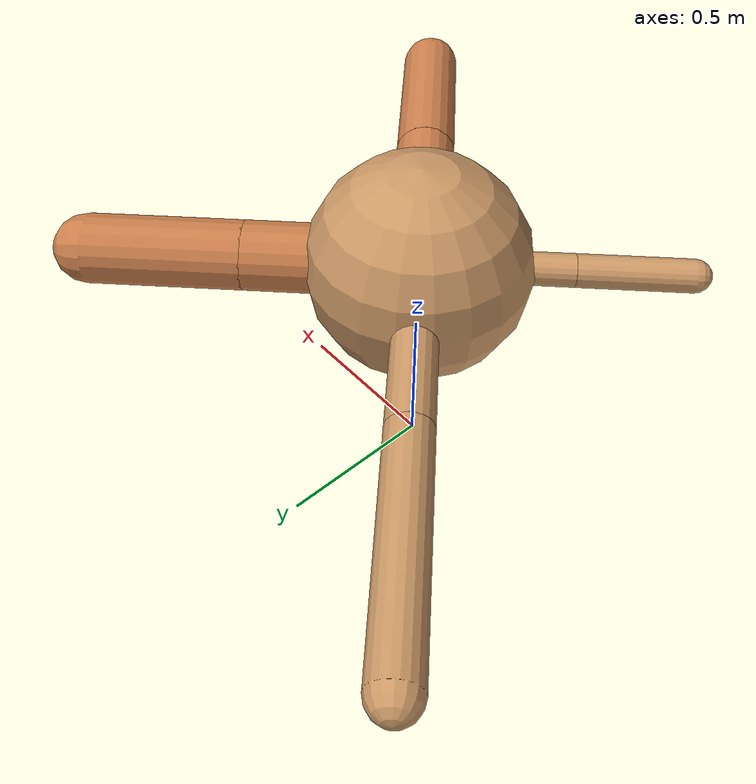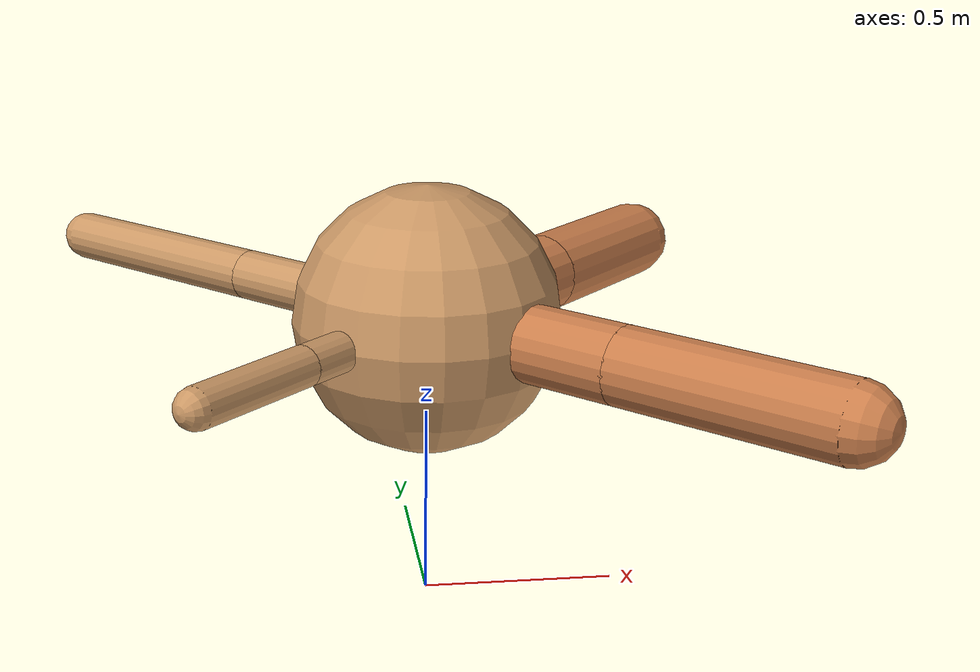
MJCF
<?xml version="1.0" ?>
<mujoco model="ant">

	<compiler angle="degree" coordinate="local" inertiafromgeom="true"/>

	<option integrator="RK4" timestep="0.01"/>

	<custom>

		<numeric data="0.0 0.0 0.55 1.0 0.0 0.0 0.0 0.0 1.0 0.0 -1.0 0.0 -1.0 0.0 1.0" name="init_qpos"/>

	</custom>

	<default>

		<joint armature="1" damping="1" limited="true"/>

		<geom conaffinity="0" condim="3" density="5.0" friction="1.5 0.1 0.1" margin="0.01" rgba="0.8 0.6 0.4 1"/>

	</default>

	<worldbody>

		<body name="torso" pos="0 0 0.75">

			<geom name="torso_geom" pos="0 0 0" size="0.3389318793683342" type="sphere"/>

			<!--joint armature="0" damping="0" limited="false" margin="0.01" name="root" pos="0 0 0" type="free"/-->

			<body name="front_left_leg" pos="0 0 0">

				<geom fromto="0 0 0 0.2 0.2 0" name="aux_1_geom" size="0.10479332834496873" type="capsule" rgba=".8 .5 .3 1"/>

				<body name="aux_1" pos="0.2 0.2 0">

					<joint axis="0 0 1" name="hip_1" pos="0.0 0.0 0.0" range="-40 40" type="hinge"/>

					<geom fromto="0 0 0 0.16472462718413133 0.16472462718413133 0" name="left_leg_geom" size="0.10479332834496873" type="capsule" rgba=".8 .5 .3 1"/>

					<body pos="0.16472462718413133 0.16472462718413133 0" name="front_left_foot">

						<joint axis="-1 1 0" name="ankle_1" pos="0.0 0.0 0.0" range="30 100" type="hinge"/>

						<geom fromto="0 0 0 0.32944925436826267 0.32944925436826267 0" name="left_ankle_geom" size="0.10479332834496873" type="capsule" rgba=".8 .5 .3 1"/>

					</body>

				</body>

			</body>

			<body name="front_right_leg" pos="0 0 0">

				<geom fromto="0 0 0 -0.2 0.2 0" name="aux_2_geom" size="0.06691145170616722" type="capsule"/>

				<body name="aux_2" pos="-0.2 0.2 0">

					<joint axis="0 0 1" name="hip_2" pos="0.0 0.0 0.0" range="-40 40" type="hinge"/>

					<geom fromto="0 0 0 -0.23752803102006861 0.23752803102006861 0" name="right_leg_geom" size="0.06691145170616722" type="capsule"/>

					<body pos="-0.23752803102006861 0.23752803102006861 0" name="front_right_foot">

						<joint axis="1 1 0" name="ankle_2" pos="0.0 0.0 0.0" range="-100 -30" type="hinge"/>

						<geom fromto="0 0 0 -0.47505606204013723 0.47505606204013723 0" name="right_ankle_geom" size="0.06691145170616722" type="capsule"/>

					</body>

				</body>

			</body>

			<body name="left_back_leg" pos="0 0 0">

				<geom fromto="0 0 0 -0.2 -0.2 0" name="aux_3_geom" size="0.04995868113159008" type="capsule"/>

				<body name="aux_3" pos="-0.2 -0.2 0">

					<joint axis="0 0 1" name="hip_3" pos="0.0 0.0 0.0" range="-40 40" type="hinge"/>

					<geom fromto="0 0 0 -0.12094809979026616 -0.12094809979026616 0" name="back_leg_geom" size="0.04995868113159008" type="capsule"/>

					<body pos="-0.12094809979026616 -0.12094809979026616 0" name="left_back_foot">

						<joint axis="-1 1 0" name="ankle_3" pos="0.0 0.0 0.0" range="-100 -30" type="hinge"/>

						<geom fromto="0 0 0 -0.24189619958053232 -0.24189619958053232 0" name="third_ankle_geom" size="0.04995868113159008" type="capsule"/>

					</body>

				</body>

			</body>

			<body name="right_back_leg" pos="0 0 0">

				<geom fromto="0 0 0 0.2 -0.2 0" name="aux_4_geom" size="0.09614866116473775" type="capsule" rgba=".8 .5 .3 1"/>

				<body name="aux_4" pos="0.2 -0.2 0">

					<joint axis="0 0 1" name="hip_4" pos="0.0 0.0 0.0" range="-40 40" type="hinge"/>

					<geom fromto="0 0 0 0.1986248262955612 -0.1986248262955612 0" name="rightback_leg_geom" size="0.09614866116473775" type="capsule" rgba=".8 .5 .3 1"/>

					<body pos="0.1986248262955612 -0.1986248262955612 0" name="right_back_foot">

						<joint axis="1 1 0" name="ankle_4" pos="0.0 0.0 0.0" range="30 100" type="hinge"/>

						<geom fromto="0 0 0 0.3972496525911224 -0.3972496525911224 0" name="fourth_ankle_geom" size="0.09614866116473775" type="capsule" rgba=".8 .5 .3 1"/>

					</body>

				</body>

			</body>

		</body>

	</worldbody>

	<actuator>

		<motor ctrllimited="true" ctrlrange="-1.0 1.0" joint="hip_4" gear="150"/>

		<motor ctrllimited="true" ctrlrange="-1.0 1.0" joint="ankle_4" gear="150"/>

		<motor ctrllimited="true" ctrlrange="-1.0 1.0" joint="hip_1" gear="150"/>

		<motor ctrllimited="true" ctrlrange="-1.0 1.0" joint="ankle_1" gear="150"/>

		<motor ctrllimited="true" ctrlrange="-1.0 1.0" joint="hip_2" gear="150"/>

		<motor ctrllimited="true" ctrlrange="-1.0 1.0" joint="ankle_2" gear="150"/>

		<motor ctrllimited="true" ctrlrange="-1.0 1.0" joint="hip_3" gear="150"/>

		<motor ctrllimited="true" ctrlrange="-1.0 1.0" joint="ankle_3" gear="150"/>

	</actuator>

</mujoco>
